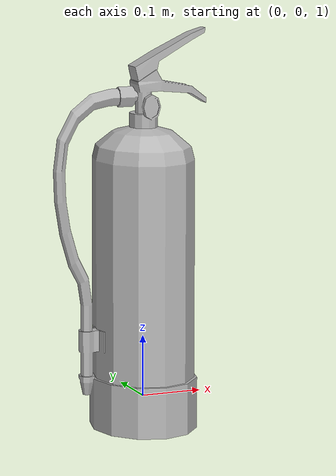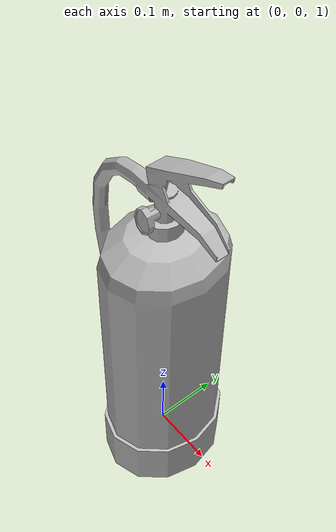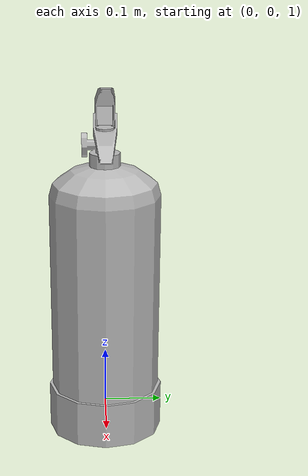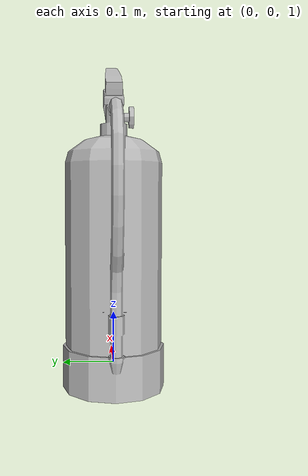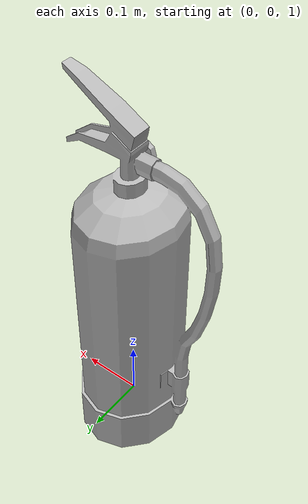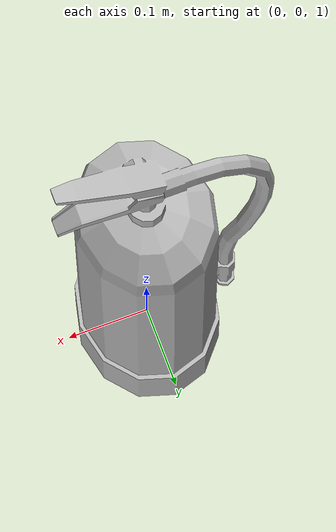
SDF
<?xml version="1.0" ?>
<sdf version="1.5">
  <model name="Extintor">
    <static>true</static>
    <link name="link">
      <collision name="collision">
        <geometry>
            <mesh>
                <uri>model://extintor/meshes/extintor.stl</uri>
                <scale>1 1 1</scale>
            </mesh>
        </geometry>
      </collision>
      <visual name="visual">
        <geometry>
          <mesh>
            <uri>model://extintor/meshes/extintor.stl</uri>
            <scale>1 1 1</scale>
          </mesh>
        </geometry>
      </visual>
    </link>
    <gazebo reference="link">
      <material>Gazebo/White</material>
    </gazebo>
  </model>
</sdf>
